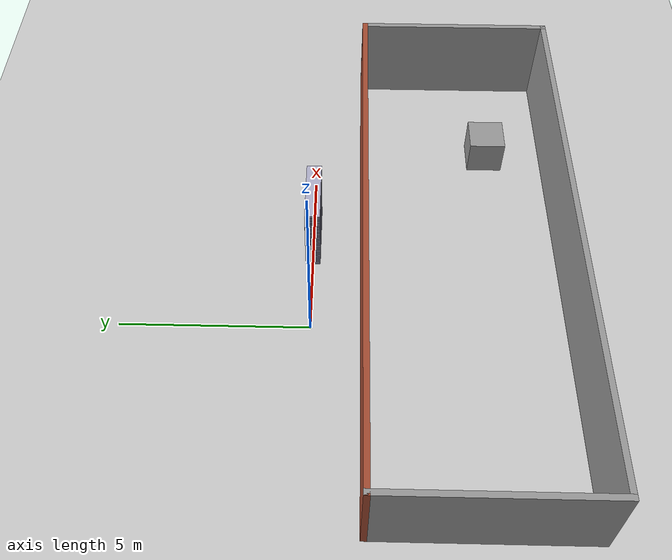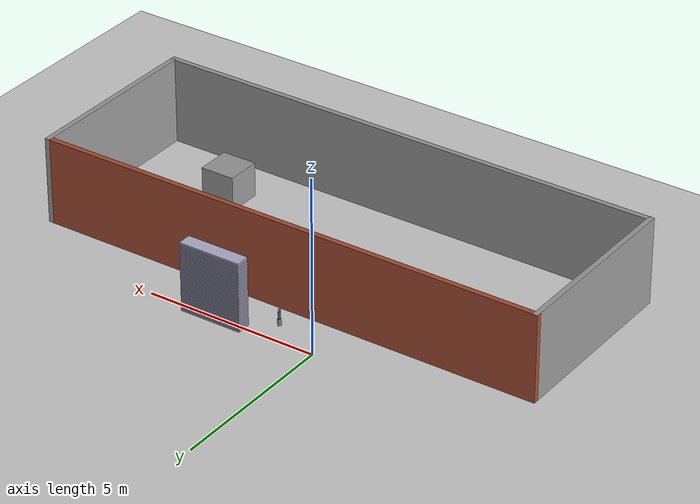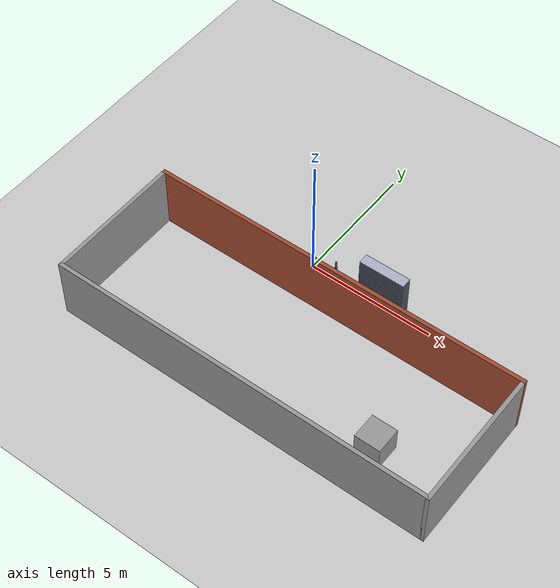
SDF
<sdf version="1.7">
 <world name="default">
  <light name="sun" type="directional">
   <pose>0 0 10 0 -0 0</pose>
   <diffuse>0.8 0.8 0.8 1</diffuse>
   <specular>0.2 0.2 0.2 1</specular>
   <attenuation>
    <range>1000</range>
    <constant>0.9</constant>
    <linear>0.01</linear>
    <quadratic>0.001</quadratic>
   </attenuation>
   <direction>-0.5 0.1 -0.9</direction>
   <spot><inner_angle>0</inner_angle><outer_angle>0</outer_angle><falloff>0</falloff></spot>
  </light>
  <model name="ground_plane">
   <static>1</static>
   <link name="link">
    <collision name="collision">
     <geometry><plane><normal>0 0 1</normal><size>100 100</size></plane></geometry>
     <surface>
      <contact><collide_bitmask>65535</collide_bitmask></contact>
      <friction><ode><mu>100</mu><mu2>50</mu2></ode></friction>
     </surface>
    </collision>
    <visual name="visual">
     <cast_shadows>0</cast_shadows>
     <geometry><plane><normal>0 0 1</normal><size>100 100</size></plane></geometry>
     <material>
      <script><uri>file://media/materials/scripts/gazebo.material</uri><name>Gazebo/Grey</name></script>
     </material>
    </visual>
   </link>
  </model>
  <gravity>0 0 -9.8</gravity>
  <magnetic_field>6e-06 2.3e-05 -4.2e-05</magnetic_field>
  <atmosphere type="adiabatic"/>
  <physics type="ode">
   <max_step_size>0.001</max_step_size>
   <real_time_factor>1</real_time_factor>
   <real_time_update_rate>1000</real_time_update_rate>
  </physics>
  <scene><ambient>0.4 0.4 0.4 1</ambient><background>0.7 0.7 0.7 1</background><shadows>1</shadows></scene>
  <spherical_coordinates>
   <surface_model>EARTH_WGS84</surface_model>
   <latitude_deg>0</latitude_deg>
   <longitude_deg>0</longitude_deg>
   <elevation>0</elevation>
   <heading_deg>0</heading_deg>
  </spherical_coordinates>
  <light name="spot_light" type="spot">
   <pose>1.5 0 3.0 0 -0.6 0</pose>
   <diffuse>1.0 0.9 0.8 1</diffuse>
   <specular>0.5 0.4 0.3 1</specular>
   <attenuation>
    <range>15</range>
    <constant>0.5</constant>
    <linear>0.01</linear>
    <quadratic>0.001</quadratic>
   </attenuation>
   <direction>-1 0 -0.8</direction>
   <spot><inner_angle>0.4</inner_angle><outer_angle>0.8</outer_angle><falloff>1.0</falloff></spot>
  </light>
  <model name="room">
   <link name="Wall_0">
    <pose>-7.425 -0.6475 0 0 0 -1.5708</pose>
    <visual name="Wall_0_Visual">
     <pose>0 0 1.25 0 -0 0</pose>
     <geometry><box><size>5.5 0.15 2.5</size></box></geometry>
     <material>
      <script><uri>file://media/materials/scripts/gazebo.material</uri><name>Gazebo/Grey</name></script>
      <ambient>1 1 1 1</ambient>
      <shader type="pixel"/>
     </material>
     <meta><layer>0</layer></meta>
    </visual>
    <collision name="Wall_0_Collision">
     <pose>0 0 1.25 0 -0 0</pose>
     <geometry><box><size>5.5 0.15 2.5</size></box></geometry>
     <surface>
      <friction>
       <ode><mu>1</mu><mu2>1</mu2><fdir1>0 0 0</fdir1><slip1>0</slip1><slip2>0</slip2></ode>
       <torsional>
        <coefficient>1</coefficient>
        <patch_radius>0</patch_radius>
        <surface_radius>0</surface_radius>
        <use_patch_radius>1</use_patch_radius>
        <ode><slip>0</slip></ode>
       </torsional>
      </friction>
      <bounce><restitution_coefficient>0</restitution_coefficient><threshold>1e+06</threshold></bounce>
      <contact>
       <collide_without_contact>0</collide_without_contact>
       <collide_without_contact_bitmask>1</collide_without_contact_bitmask>
       <collide_bitmask>1</collide_bitmask>
       <ode>
        <soft_cfm>0</soft_cfm>
        <soft_erp>0.2</soft_erp>
        <kp>1e+13</kp>
        <kd>1</kd>
        <max_vel>0.01</max_vel>
        <min_depth>0</min_depth>
       </ode>
       <bullet>
        <split_impulse>1</split_impulse>
        <split_impulse_penetration_threshold>-0.01</split_impulse_penetration_threshold>
        <soft_cfm>0</soft_cfm>
        <soft_erp>0.2</soft_erp>
        <kp>1e+13</kp>
        <kd>1</kd>
       </bullet>
      </contact>
     </surface>
    </collision>
   </link>
   <link name="Wall_1">
    <pose>0 -3.3225 0 0 -0 0</pose>
    <visual name="Wall_1_Visual">
     <pose>0 0 1.25 0 -0 0</pose>
     <geometry><box><size>15 0.15 2.5</size></box></geometry>
     <material>
      <script><uri>file://media/materials/scripts/gazebo.material</uri><name>Gazebo/Grey</name></script>
      <ambient>1 1 1 1</ambient>
      <shader type="pixel"/>
     </material>
     <meta><layer>0</layer></meta>
    </visual>
    <collision name="Wall_1_Collision">
     <pose>0 0 1.25 0 -0 0</pose>
     <geometry><box><size>15 0.15 2.5</size></box></geometry>
     <surface>
      <friction>
       <ode><mu>1</mu><mu2>1</mu2><fdir1>0 0 0</fdir1><slip1>0</slip1><slip2>0</slip2></ode>
       <torsional>
        <coefficient>1</coefficient>
        <patch_radius>0</patch_radius>
        <surface_radius>0</surface_radius>
        <use_patch_radius>1</use_patch_radius>
        <ode><slip>0</slip></ode>
       </torsional>
      </friction>
      <bounce><restitution_coefficient>0</restitution_coefficient><threshold>1e+06</threshold></bounce>
      <contact>
       <collide_without_contact>0</collide_without_contact>
       <collide_without_contact_bitmask>1</collide_without_contact_bitmask>
       <collide_bitmask>1</collide_bitmask>
       <ode>
        <soft_cfm>0</soft_cfm>
        <soft_erp>0.2</soft_erp>
        <kp>1e+13</kp>
        <kd>1</kd>
        <max_vel>0.01</max_vel>
        <min_depth>0</min_depth>
       </ode>
       <bullet>
        <split_impulse>1</split_impulse>
        <split_impulse_penetration_threshold>-0.01</split_impulse_penetration_threshold>
        <soft_cfm>0</soft_cfm>
        <soft_erp>0.2</soft_erp>
        <kp>1e+13</kp>
        <kd>1</kd>
       </bullet>
      </contact>
     </surface>
    </collision>
   </link>
   <link name="Wall_2">
    <pose>7.425 -0.6475 0 0 -0 1.5708</pose>
    <visual name="Wall_2_Visual">
     <pose>0 0 1.25 0 -0 0</pose>
     <geometry><box><size>5.5 0.15 2.5</size></box></geometry>
     <material>
      <script><uri>file://media/materials/scripts/gazebo.material</uri><name>Gazebo/Grey</name></script>
      <ambient>1 1 1 1</ambient>
      <shader type="pixel"/>
     </material>
     <meta><layer>0</layer></meta>
    </visual>
    <collision name="Wall_2_Collision">
     <pose>0 0 1.25 0 -0 0</pose>
     <geometry><box><size>5.5 0.15 2.5</size></box></geometry>
     <surface>
      <friction>
       <ode><mu>1</mu><mu2>1</mu2><fdir1>0 0 0</fdir1><slip1>0</slip1><slip2>0</slip2></ode>
       <torsional>
        <coefficient>1</coefficient>
        <patch_radius>0</patch_radius>
        <surface_radius>0</surface_radius>
        <use_patch_radius>1</use_patch_radius>
        <ode><slip>0</slip></ode>
       </torsional>
      </friction>
      <bounce><restitution_coefficient>0</restitution_coefficient><threshold>1e+06</threshold></bounce>
      <contact>
       <collide_without_contact>0</collide_without_contact>
       <collide_without_contact_bitmask>1</collide_without_contact_bitmask>
       <collide_bitmask>1</collide_bitmask>
       <ode>
        <soft_cfm>0</soft_cfm>
        <soft_erp>0.2</soft_erp>
        <kp>1e+13</kp>
        <kd>1</kd>
        <max_vel>0.01</max_vel>
        <min_depth>0</min_depth>
       </ode>
       <bullet>
        <split_impulse>1</split_impulse>
        <split_impulse_penetration_threshold>-0.01</split_impulse_penetration_threshold>
        <soft_cfm>0</soft_cfm>
        <soft_erp>0.2</soft_erp>
        <kp>1e+13</kp>
        <kd>1</kd>
       </bullet>
      </contact>
     </surface>
    </collision>
   </link>
   <link name="Wall_3">
    <pose>0 2.0275 0 0 -0 3.14159</pose>
    <visual name="Wall_3_Visual">
     <pose>0 0 1.25 0 -0 0</pose>
     <geometry><box><size>15 0.15 2.5</size></box></geometry>
     <material>
      <script><uri>file://media/materials/scripts/gazebo.material</uri><name>Gazebo/Bricks</name></script>
      <ambient>0.435294 0.796078 0.67451 1</ambient>
      <shader type="pixel"/>
     </material>
     <meta><layer>0</layer></meta>
    </visual>
    <collision name="Wall_3_Collision">
     <pose>0 0 1.25 0 -0 0</pose>
     <geometry><box><size>15 0.15 2.5</size></box></geometry>
     <surface>
      <friction>
       <ode><mu>1</mu><mu2>1</mu2><fdir1>0 0 0</fdir1><slip1>0</slip1><slip2>0</slip2></ode>
       <torsional>
        <coefficient>1</coefficient>
        <patch_radius>0</patch_radius>
        <surface_radius>0</surface_radius>
        <use_patch_radius>1</use_patch_radius>
        <ode><slip>0</slip></ode>
       </torsional>
      </friction>
      <bounce><restitution_coefficient>0</restitution_coefficient><threshold>1e+06</threshold></bounce>
      <contact>
       <collide_without_contact>0</collide_without_contact>
       <collide_without_contact_bitmask>1</collide_without_contact_bitmask>
       <collide_bitmask>1</collide_bitmask>
       <ode>
        <soft_cfm>0</soft_cfm>
        <soft_erp>0.2</soft_erp>
        <kp>1e+13</kp>
        <kd>1</kd>
        <max_vel>0.01</max_vel>
        <min_depth>0</min_depth>
       </ode>
       <bullet>
        <split_impulse>1</split_impulse>
        <split_impulse_penetration_threshold>-0.01</split_impulse_penetration_threshold>
        <soft_cfm>0</soft_cfm>
        <soft_erp>0.2</soft_erp>
        <kp>1e+13</kp>
        <kd>1</kd>
       </bullet>
      </contact>
     </surface>
    </collision>
   </link>
   <link name="link_0">
    <inertial>
     <mass>1</mass>
     <inertia>
      <ixx>0.166667</ixx>
      <ixy>0</ixy>
      <ixz>0</ixz>
      <iyy>0.166667</iyy>
      <iyz>0</iyz>
      <izz>0.166667</izz>
     </inertia>
    </inertial>
    <pose>4.34128 -1.56708 0.5 0 -0 0</pose>
    <visual name="visual">
     <geometry><box><size>1 1 1</size></box></geometry>
     <material>
      <lighting>1</lighting>
      <script><uri>file://media/materials/scripts/gazebo.material</uri><name>Gazebo/Grey</name></script>
      <shader type="pixel"/>
     </material>
    </visual>
    <collision name="collision">
     <geometry><box><size>1 1 1</size></box></geometry>
     <surface>
      <friction>
       <ode><mu>1</mu><mu2>1</mu2><fdir1>0 0 0</fdir1><slip1>0</slip1><slip2>0</slip2></ode>
       <torsional>
        <coefficient>1</coefficient>
        <patch_radius>0</patch_radius>
        <surface_radius>0</surface_radius>
        <use_patch_radius>1</use_patch_radius>
        <ode><slip>0</slip></ode>
       </torsional>
      </friction>
      <bounce><restitution_coefficient>0</restitution_coefficient><threshold>1e+06</threshold></bounce>
      <contact>
       <collide_without_contact>0</collide_without_contact>
       <collide_without_contact_bitmask>1</collide_without_contact_bitmask>
       <collide_bitmask>1</collide_bitmask>
       <ode>
        <soft_cfm>0</soft_cfm>
        <soft_erp>0.2</soft_erp>
        <kp>1e+13</kp>
        <kd>1</kd>
        <max_vel>0.01</max_vel>
        <min_depth>0</min_depth>
       </ode>
       <bullet>
        <split_impulse>1</split_impulse>
        <split_impulse_penetration_threshold>-0.01</split_impulse_penetration_threshold>
        <soft_cfm>0</soft_cfm>
        <soft_erp>0.2</soft_erp>
        <kp>1e+13</kp>
        <kd>1</kd>
       </bullet>
      </contact>
     </surface>
    </collision>
   </link>
   <static>1</static>
   <pose>1.885 -3.3975 0 0 -0 0</pose>
  </model>
  <model name="sheet_stack">
   <static>true</static>
   <pose>3.0 0 0.01 0 0 0</pose>
   <link name="sheet_1">
    <pose>0 0 0.0025 0 0 0</pose>
    <collision name="collision"><geometry><box><size>1.8 0.4 0.05</size></box></geometry></collision>
    <visual name="visual">
     <geometry><box><size>1.8 0.4 0.05</size></box></geometry>
     <material>
      <ambient>0.8 0.8 0.9 1</ambient>
      <diffuse>0.6 0.6 0.7 1</diffuse>
      <specular>0.3 0.3 0.4 0.5</specular>
     </material>
    </visual>
   </link>
   <link name="sheet_2">
    <pose>0 0 0.0525 0 0 0</pose>
    <collision name="collision"><geometry><box><size>1.8 0.4 0.05</size></box></geometry></collision>
    <visual name="visual">
     <geometry><box><size>1.8 0.4 0.05</size></box></geometry>
     <material>
      <ambient>0.8 0.8 0.9 1</ambient>
      <diffuse>0.6 0.6 0.7 1</diffuse>
      <specular>0.3 0.3 0.4 0.5</specular>
     </material>
    </visual>
   </link>
   <link name="sheet_3">
    <pose>0 0 0.1025 0 0 0</pose>
    <collision name="collision"><geometry><box><size>1.8 0.4 0.05</size></box></geometry></collision>
    <visual name="visual">
     <geometry><box><size>1.8 0.4 0.05</size></box></geometry>
     <material>
      <ambient>0.8 0.8 0.9 1</ambient>
      <diffuse>0.6 0.6 0.7 1</diffuse>
      <specular>0.3 0.3 0.4 0.5</specular>
     </material>
    </visual>
   </link>
   <link name="sheet_4">
    <pose>0 0 0.1525 0 0 0</pose>
    <collision name="collision"><geometry><box><size>1.8 0.4 0.05</size></box></geometry></collision>
    <visual name="visual">
     <geometry><box><size>1.8 0.4 0.05</size></box></geometry>
     <material>
      <ambient>0.8 0.8 0.9 1</ambient>
      <diffuse>0.6 0.6 0.7 1</diffuse>
      <specular>0.3 0.3 0.4 0.5</specular>
     </material>
    </visual>
   </link>
   <link name="sheet_5">
    <pose>0 0 0.2025 0 0 0</pose>
    <collision name="collision"><geometry><box><size>1.8 0.4 0.05</size></box></geometry></collision>
    <visual name="visual">
     <geometry><box><size>1.8 0.4 0.05</size></box></geometry>
     <material>
      <ambient>0.8 0.8 0.9 1</ambient>
      <diffuse>0.6 0.6 0.7 1</diffuse>
      <specular>0.3 0.3 0.4 0.5</specular>
     </material>
    </visual>
   </link>
   <link name="sheet_6">
    <pose>0 0 0.2525 0 0 0</pose>
    <collision name="collision"><geometry><box><size>1.8 0.4 0.05</size></box></geometry></collision>
    <visual name="visual">
     <geometry><box><size>1.8 0.4 0.05</size></box></geometry>
     <material>
      <ambient>0.8 0.8 0.9 1</ambient>
      <diffuse>0.6 0.6 0.7 1</diffuse>
      <specular>0.3 0.3 0.4 0.5</specular>
     </material>
    </visual>
   </link>
   <link name="sheet_7">
    <pose>0 0 0.3025 0 0 0</pose>
    <collision name="collision"><geometry><box><size>1.8 0.4 0.05</size></box></geometry></collision>
    <visual name="visual">
     <geometry><box><size>1.8 0.4 0.05</size></box></geometry>
     <material>
      <ambient>0.8 0.8 0.9 1</ambient>
      <diffuse>0.6 0.6 0.7 1</diffuse>
      <specular>0.3 0.3 0.4 0.5</specular>
     </material>
    </visual>
   </link>
   <link name="sheet_8">
    <pose>0 0 0.3525 0 0 0</pose>
    <collision name="collision"><geometry><box><size>1.8 0.4 0.05</size></box></geometry></collision>
    <visual name="visual">
     <geometry><box><size>1.8 0.4 0.05</size></box></geometry>
     <material>
      <ambient>0.8 0.8 0.9 1</ambient>
      <diffuse>0.6 0.6 0.7 1</diffuse>
      <specular>0.3 0.3 0.4 0.5</specular>
     </material>
    </visual>
   </link>
   <link name="sheet_9">
    <pose>0 0 0.4025 0 0 0</pose>
    <collision name="collision"><geometry><box><size>1.8 0.4 0.05</size></box></geometry></collision>
    <visual name="visual">
     <geometry><box><size>1.8 0.4 0.05</size></box></geometry>
     <material>
      <ambient>0.8 0.8 0.9 1</ambient>
      <diffuse>0.6 0.6 0.7 1</diffuse>
      <specular>0.3 0.3 0.4 0.5</specular>
     </material>
    </visual>
   </link>
   <link name="sheet_10">
    <pose>0 0 0.4525 0 0 0</pose>
    <collision name="collision"><geometry><box><size>1.8 0.4 0.05</size></box></geometry></collision>
    <visual name="visual">
     <geometry><box><size>1.8 0.4 0.05</size></box></geometry>
     <material>
      <ambient>0.8 0.8 0.9 1</ambient>
      <diffuse>0.6 0.6 0.7 1</diffuse>
      <specular>0.3 0.3 0.4 0.5</specular>
     </material>
    </visual>
   </link>
   <link name="sheet_11">
    <pose>0 0 0.5025 0 0 0</pose>
    <collision name="collision"><geometry><box><size>1.8 0.4 0.05</size></box></geometry></collision>
    <visual name="visual">
     <geometry><box><size>1.8 0.4 0.05</size></box></geometry>
     <material>
      <ambient>0.8 0.8 0.9 1</ambient>
      <diffuse>0.6 0.6 0.7 1</diffuse>
      <specular>0.3 0.3 0.4 0.5</specular>
     </material>
    </visual>
   </link>
   <link name="sheet_12">
    <pose>0 0 0.5525 0 0 0</pose>
    <collision name="collision"><geometry><box><size>1.8 0.4 0.05</size></box></geometry></collision>
    <visual name="visual">
     <geometry><box><size>1.8 0.4 0.05</size></box></geometry>
     <material>
      <ambient>0.8 0.8 0.9 1</ambient>
      <diffuse>0.6 0.6 0.7 1</diffuse>
      <specular>0.3 0.3 0.4 0.5</specular>
     </material>
    </visual>
   </link>
   <link name="sheet_13">
    <pose>0 0 0.6025 0 0 0</pose>
    <collision name="collision"><geometry><box><size>1.8 0.4 0.05</size></box></geometry></collision>
    <visual name="visual">
     <geometry><box><size>1.8 0.4 0.05</size></box></geometry>
     <material>
      <ambient>0.8 0.8 0.9 1</ambient>
      <diffuse>0.6 0.6 0.7 1</diffuse>
      <specular>0.3 0.3 0.4 0.5</specular>
     </material>
    </visual>
   </link>
   <link name="sheet_14">
    <pose>0 0 0.6525 0 0 0</pose>
    <collision name="collision"><geometry><box><size>1.8 0.4 0.05</size></box></geometry></collision>
    <visual name="visual">
     <geometry><box><size>1.8 0.4 0.05</size></box></geometry>
     <material>
      <ambient>0.8 0.8 0.9 1</ambient>
      <diffuse>0.6 0.6 0.7 1</diffuse>
      <specular>0.3 0.3 0.4 0.5</specular>
     </material>
    </visual>
   </link>
   <link name="sheet_15">
    <pose>0 0 0.7025 0 0 0</pose>
    <collision name="collision"><geometry><box><size>1.8 0.4 0.05</size></box></geometry></collision>
    <visual name="visual">
     <geometry><box><size>1.8 0.4 0.05</size></box></geometry>
     <material>
      <ambient>0.8 0.8 0.9 1</ambient>
      <diffuse>0.6 0.6 0.7 1</diffuse>
      <specular>0.3 0.3 0.4 0.5</specular>
     </material>
    </visual>
   </link>
   <link name="sheet_16">
    <pose>0 0 0.7525 0 0 0</pose>
    <collision name="collision"><geometry><box><size>1.8 0.4 0.05</size></box></geometry></collision>
    <visual name="visual">
     <geometry><box><size>1.8 0.4 0.05</size></box></geometry>
     <material>
      <ambient>0.8 0.8 0.9 1</ambient>
      <diffuse>0.6 0.6 0.7 1</diffuse>
      <specular>0.3 0.3 0.4 0.5</specular>
     </material>
    </visual>
   </link>
   <link name="sheet_17">
    <pose>0 0 0.8025 0 0 0</pose>
    <collision name="collision"><geometry><box><size>1.8 0.4 0.05</size></box></geometry></collision>
    <visual name="visual">
     <geometry><box><size>1.8 0.4 0.05</size></box></geometry>
     <material>
      <ambient>0.8 0.8 0.9 1</ambient>
      <diffuse>0.6 0.6 0.7 1</diffuse>
      <specular>0.3 0.3 0.4 0.5</specular>
     </material>
    </visual>
   </link>
   <link name="sheet_18">
    <pose>0 0 0.8525 0 0 0</pose>
    <collision name="collision"><geometry><box><size>1.8 0.4 0.05</size></box></geometry></collision>
    <visual name="visual">
     <geometry><box><size>1.8 0.4 0.05</size></box></geometry>
     <material>
      <ambient>0.8 0.8 0.9 1</ambient>
      <diffuse>0.6 0.6 0.7 1</diffuse>
      <specular>0.3 0.3 0.4 0.5</specular>
     </material>
    </visual>
   </link>
   <link name="sheet_19">
    <pose>0 0 0.9025 0 0 0</pose>
    <collision name="collision"><geometry><box><size>1.8 0.4 0.05</size></box></geometry></collision>
    <visual name="visual">
     <geometry><box><size>1.8 0.4 0.05</size></box></geometry>
     <material>
      <ambient>0.8 0.8 0.9 1</ambient>
      <diffuse>0.6 0.6 0.7 1</diffuse>
      <specular>0.3 0.3 0.4 0.5</specular>
     </material>
    </visual>
   </link>
   <link name="sheet_20">
    <pose>0 0 0.9525 0 0 0</pose>
    <collision name="collision"><geometry><box><size>1.8 0.4 0.05</size></box></geometry></collision>
    <visual name="visual">
     <geometry><box><size>1.8 0.4 0.05</size></box></geometry>
     <material>
      <ambient>0.8 0.8 0.9 1</ambient>
      <diffuse>0.6 0.6 0.7 1</diffuse>
      <specular>0.3 0.3 0.4 0.5</specular>
     </material>
    </visual>
   </link>
   <link name="sheet_21">
    <pose>0 0 1.0025 0 0 0</pose>
    <collision name="collision"><geometry><box><size>1.8 0.4 0.05</size></box></geometry></collision>
    <visual name="visual">
     <geometry><box><size>1.8 0.4 0.05</size></box></geometry>
     <material>
      <ambient>0.8 0.8 0.9 1</ambient>
      <diffuse>0.6 0.6 0.7 1</diffuse>
      <specular>0.3 0.3 0.4 0.5</specular>
     </material>
    </visual>
   </link>
   <link name="sheet_22">
    <pose>0 0 1.0525 0 0 0</pose>
    <collision name="collision"><geometry><box><size>1.8 0.4 0.05</size></box></geometry></collision>
    <visual name="visual">
     <geometry><box><size>1.8 0.4 0.05</size></box></geometry>
     <material>
      <ambient>0.8 0.8 0.9 1</ambient>
      <diffuse>0.6 0.6 0.7 1</diffuse>
      <specular>0.3 0.3 0.4 0.5</specular>
     </material>
    </visual>
   </link>
   <link name="sheet_23">
    <pose>0 0 1.1025 0 0 0</pose>
    <collision name="collision"><geometry><box><size>1.8 0.4 0.05</size></box></geometry></collision>
    <visual name="visual">
     <geometry><box><size>1.8 0.4 0.05</size></box></geometry>
     <material>
      <ambient>0.8 0.8 0.9 1</ambient>
      <diffuse>0.6 0.6 0.7 1</diffuse>
      <specular>0.3 0.3 0.4 0.5</specular>
     </material>
    </visual>
   </link>
   <link name="sheet_24">
    <pose>0 0 1.1525 0 0 0</pose>
    <collision name="collision"><geometry><box><size>1.8 0.4 0.05</size></box></geometry></collision>
    <visual name="visual">
     <geometry><box><size>1.8 0.4 0.05</size></box></geometry>
     <material>
      <ambient>0.8 0.8 0.9 1</ambient>
      <diffuse>0.6 0.6 0.7 1</diffuse>
      <specular>0.3 0.3 0.4 0.5</specular>
     </material>
    </visual>
   </link>
   <link name="sheet_25">
    <pose>0 0 1.2025 0 0 0</pose>
    <collision name="collision"><geometry><box><size>1.8 0.4 0.05</size></box></geometry></collision>
    <visual name="visual">
     <geometry><box><size>1.8 0.4 0.05</size></box></geometry>
     <material>
      <ambient>0.8 0.8 0.9 1</ambient>
      <diffuse>0.6 0.6 0.7 1</diffuse>
      <specular>0.3 0.3 0.4 0.5</specular>
     </material>
    </visual>
   </link>
   <link name="sheet_26">
    <pose>0 0 1.2525 0 0 0</pose>
    <collision name="collision"><geometry><box><size>1.8 0.4 0.05</size></box></geometry></collision>
    <visual name="visual">
     <geometry><box><size>1.8 0.4 0.05</size></box></geometry>
     <material>
      <ambient>0.8 0.8 0.9 1</ambient>
      <diffuse>0.6 0.6 0.7 1</diffuse>
      <specular>0.3 0.3 0.4 0.5</specular>
     </material>
    </visual>
   </link>
   <link name="sheet_27">
    <pose>0 0 1.3025 0 0 0</pose>
    <collision name="collision"><geometry><box><size>1.8 0.4 0.05</size></box></geometry></collision>
    <visual name="visual">
     <geometry><box><size>1.8 0.4 0.05</size></box></geometry>
     <material>
      <ambient>0.8 0.8 0.9 1</ambient>
      <diffuse>0.6 0.6 0.7 1</diffuse>
      <specular>0.3 0.3 0.4 0.5</specular>
     </material>
    </visual>
   </link>
   <link name="sheet_28">
    <pose>0 0 1.3525 0 0 0</pose>
    <collision name="collision"><geometry><box><size>1.8 0.4 0.05</size></box></geometry></collision>
    <visual name="visual">
     <geometry><box><size>1.8 0.4 0.05</size></box></geometry>
     <material>
      <ambient>0.8 0.8 0.9 1</ambient>
      <diffuse>0.6 0.6 0.7 1</diffuse>
      <specular>0.3 0.3 0.4 0.5</specular>
     </material>
    </visual>
   </link>
   <link name="sheet_29">
    <pose>0 0 1.4025 0 0 0</pose>
    <collision name="collision"><geometry><box><size>1.8 0.4 0.05</size></box></geometry></collision>
    <visual name="visual">
     <geometry><box><size>1.8 0.4 0.05</size></box></geometry>
     <material>
      <ambient>0.8 0.8 0.9 1</ambient>
      <diffuse>0.6 0.6 0.7 1</diffuse>
      <specular>0.3 0.3 0.4 0.5</specular>
     </material>
    </visual>
   </link>
   <link name="sheet_30">
    <pose>0 0 1.4525 0 0 0</pose>
    <collision name="collision"><geometry><box><size>1.8 0.4 0.05</size></box></geometry></collision>
    <visual name="visual">
     <geometry><box><size>1.8 0.4 0.05</size></box></geometry>
     <material>
      <ambient>0.8 0.8 0.9 1</ambient>
      <diffuse>0.6 0.6 0.7 1</diffuse>
      <specular>0.3 0.3 0.4 0.5</specular>
     </material>
    </visual>
   </link>
   <link name="sheet_31">
    <pose>0 0 1.5025 0 0 0</pose>
    <collision name="collision"><geometry><box><size>1.8 0.4 0.05</size></box></geometry></collision>
    <visual name="visual">
     <geometry><box><size>1.8 0.4 0.05</size></box></geometry>
     <material>
      <ambient>0.8 0.8 0.9 1</ambient>
      <diffuse>0.6 0.6 0.7 1</diffuse>
      <specular>0.3 0.3 0.4 0.5</specular>
     </material>
    </visual>
   </link>
   <link name="sheet_32">
    <pose>0 0 1.5525 0 0 0</pose>
    <collision name="collision"><geometry><box><size>1.8 0.4 0.05</size></box></geometry></collision>
    <visual name="visual">
     <geometry><box><size>1.8 0.4 0.05</size></box></geometry>
     <material>
      <ambient>0.8 0.8 0.9 1</ambient>
      <diffuse>0.6 0.6 0.7 1</diffuse>
      <specular>0.3 0.3 0.4 0.5</specular>
     </material>
    </visual>
   </link>
   <link name="sheet_33">
    <pose>0 0 1.6025 0 0 0</pose>
    <collision name="collision"><geometry><box><size>1.8 0.4 0.05</size></box></geometry></collision>
    <visual name="visual">
     <geometry><box><size>1.8 0.4 0.05</size></box></geometry>
     <material>
      <ambient>0.8 0.8 0.9 1</ambient>
      <diffuse>0.6 0.6 0.7 1</diffuse>
      <specular>0.3 0.3 0.4 0.5</specular>
     </material>
    </visual>
   </link>
   <link name="sheet_34">
    <pose>0 0 1.6525 0 0 0</pose>
    <collision name="collision"><geometry><box><size>1.8 0.4 0.05</size></box></geometry></collision>
    <visual name="visual">
     <geometry><box><size>1.8 0.4 0.05</size></box></geometry>
     <material>
      <ambient>0.8 0.8 0.9 1</ambient>
      <diffuse>0.6 0.6 0.7 1</diffuse>
      <specular>0.3 0.3 0.4 0.5</specular>
     </material>
    </visual>
   </link>
   <link name="sheet_35">
    <pose>0 0 1.7025 0 0 0</pose>
    <collision name="collision"><geometry><box><size>1.8 0.4 0.05</size></box></geometry></collision>
    <visual name="visual">
     <geometry><box><size>1.8 0.4 0.05</size></box></geometry>
     <material>
      <ambient>0.8 0.8 0.9 1</ambient>
      <diffuse>0.6 0.6 0.7 1</diffuse>
      <specular>0.3 0.3 0.4 0.5</specular>
     </material>
    </visual>
   </link>
   <link name="sheet_36">
    <pose>0 0 1.7525 0 0 0</pose>
    <collision name="collision"><geometry><box><size>1.8 0.4 0.05</size></box></geometry></collision>
    <visual name="visual">
     <geometry><box><size>1.8 0.4 0.05</size></box></geometry>
     <material>
      <ambient>0.8 0.8 0.9 1</ambient>
      <diffuse>0.6 0.6 0.7 1</diffuse>
      <specular>0.3 0.3 0.4 0.5</specular>
     </material>
    </visual>
   </link>
   <link name="sheet_37">
    <pose>0 0 1.8025 0 0 0</pose>
    <collision name="collision"><geometry><box><size>1.8 0.4 0.05</size></box></geometry></collision>
    <visual name="visual">
     <geometry><box><size>1.8 0.4 0.05</size></box></geometry>
     <material>
      <ambient>0.8 0.8 0.9 1</ambient>
      <diffuse>0.6 0.6 0.7 1</diffuse>
      <specular>0.3 0.3 0.4 0.5</specular>
     </material>
    </visual>
   </link>
   <link name="sheet_38">
    <pose>0 0 1.8525 0 0 0</pose>
    <collision name="collision"><geometry><box><size>1.8 0.4 0.05</size></box></geometry></collision>
    <visual name="visual">
     <geometry><box><size>1.8 0.4 0.05</size></box></geometry>
     <material>
      <ambient>0.8 0.8 0.9 1</ambient>
      <diffuse>0.6 0.6 0.7 1</diffuse>
      <specular>0.3 0.3 0.4 0.5</specular>
     </material>
    </visual>
   </link>
   <link name="sheet_39">
    <pose>0 0 1.9025 0 0 0</pose>
    <collision name="collision"><geometry><box><size>1.8 0.4 0.05</size></box></geometry></collision>
    <visual name="visual">
     <geometry><box><size>1.8 0.4 0.05</size></box></geometry>
     <material>
      <ambient>0.8 0.8 0.9 1</ambient>
      <diffuse>0.6 0.6 0.7 1</diffuse>
      <specular>0.3 0.3 0.4 0.5</specular>
     </material>
    </visual>
   </link>
   <link name="sheet_40">
    <pose>0 0 1.9525 0 0 0</pose>
    <collision name="collision"><geometry><box><size>1.8 0.4 0.05</size></box></geometry></collision>
    <visual name="visual">
     <geometry><box><size>1.8 0.4 0.05</size></box></geometry>
     <material>
      <ambient>0.9 0.9 1.0 1</ambient>
      <diffuse>0.7 0.7 0.8 1</diffuse>
      <specular>0.5 0.5 0.6 0.7</specular>
     </material>
    </visual>
   </link>
  </model>
  <model name="simple_arm">
   <pose>1.0 0 0.5 0 0 0</pose>
   <link name="base">
    <pose>0 0 0.1 0 0 0</pose>
    <collision name="collision">
     <geometry><cylinder><radius>0.05</radius><length>0.2</length></cylinder></geometry>
    </collision>
    <visual name="visual">
     <geometry><cylinder><radius>0.05</radius><length>0.2</length></cylinder></geometry>
     <material><ambient>0.3 0.3 0.3 1</ambient><diffuse>0.5 0.5 0.5 1</diffuse></material>
    </visual>
   </link>
   <link name="arm1">
    <pose>0 0 0.25 0 0 0</pose>
    <collision name="collision"><geometry><box><size>0.05 0.05 0.3</size></box></geometry></collision>
    <visual name="visual">
     <geometry><box><size>0.05 0.05 0.3</size></box></geometry>
     <material><ambient>0.2 0.4 0.6 1</ambient><diffuse>0.3 0.5 0.7 1</diffuse></material>
    </visual>
   </link>
   <link name="end_effector">
    <pose>0 0 0.45 0 0 0</pose>
    <collision name="collision">
     <geometry><cylinder><radius>0.03</radius><length>0.05</length></cylinder></geometry>
    </collision>
    <visual name="visual">
     <geometry><cylinder><radius>0.03</radius><length>0.05</length></cylinder></geometry>
     <material><ambient>0.8 0.2 0.2 1</ambient><diffuse>0.9 0.3 0.3 1</diffuse></material>
    </visual>
   </link>
  </model>
 </world>
</sdf>
